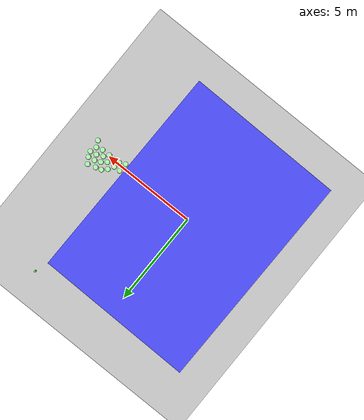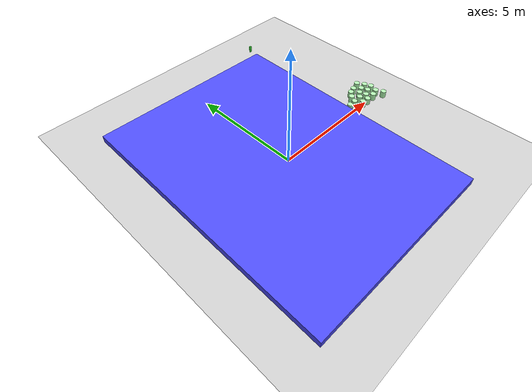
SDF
<sdf version="1.7">
 <world name="default">
  <model name="ground_plane">
   <static>1</static>
   <link name="link">
    <collision name="collision">
     <geometry><plane><normal>0 0 1</normal><size>100 100</size></plane></geometry>
     <surface><friction><ode><mu>100</mu><mu2>50</mu2></ode></friction></surface>
    </collision>
    <visual name="visual">
     <cast_shadows>0</cast_shadows>
     <geometry><plane><normal>0 0 1</normal><size>100 100</size></plane></geometry>
     <material>
      <script><uri>file://media/materials/scripts/gazebo.material</uri><name>Gazebo/Grey</name></script>
     </material>
    </visual>
   </link>
  </model>
  <model name="ban_400_80_30_clone_clone">
   <link name="link">
    <inertial>
     <mass>1</mass>
     <inertia>
      <ixx>0.166667</ixx>
      <ixy>0</ixy>
      <ixz>0</ixz>
      <iyy>0.166667</iyy>
      <iyz>0</iyz>
      <izz>0.166667</izz>
     </inertia>
    </inertial>
    <visual name="visual">
     <geometry><box><size>11.703 8.48251 0.306303</size></box></geometry>
     <material>
      <script><name>Gazebo/Grey</name><uri>file://media/materials/scripts/gazebo.material</uri></script>
      <shader type="pixel"><normal_map>__default__</normal_map></shader>
      <ambient>0.3 0.3 1 1</ambient>
      <diffuse>0.7 0.7 0.7 1</diffuse>
      <specular>0.01 0.01 0.01 1</specular>
      <emissive>0 0 0 1</emissive>
     </material>
    </visual>
    <collision name="collision">
     <geometry><box><size>11.703 8.48251 0.306303</size></box></geometry>
     <surface>
      <friction>
       <ode><mu>1</mu><mu2>1</mu2><fdir1>0 0 0</fdir1><slip1>0</slip1><slip2>0</slip2></ode>
       <torsional>
        <coefficient>1</coefficient>
        <patch_radius>0</patch_radius>
        <surface_radius>0</surface_radius>
        <use_patch_radius>1</use_patch_radius>
        <ode><slip>0</slip></ode>
       </torsional>
      </friction>
      <bounce><restitution_coefficient>0</restitution_coefficient><threshold>1e+06</threshold></bounce>
      <contact>
       <collide_without_contact>0</collide_without_contact>
       <collide_without_contact_bitmask>1</collide_without_contact_bitmask>
       <collide_bitmask>1</collide_bitmask>
       <ode>
        <soft_cfm>0</soft_cfm>
        <soft_erp>0.2</soft_erp>
        <kp>1e+13</kp>
        <kd>1</kd>
        <max_vel>0.01</max_vel>
        <min_depth>0</min_depth>
       </ode>
       <bullet>
        <split_impulse>1</split_impulse>
        <split_impulse_penetration_threshold>-0.01</split_impulse_penetration_threshold>
        <soft_cfm>0</soft_cfm>
        <soft_erp>0.2</soft_erp>
        <kp>1e+13</kp>
        <kd>1</kd>
       </bullet>
      </contact>
     </surface>
    </collision>
   </link>
   <static>1</static>
   <pose>-0.303945 0.196417 0.141155 0 -0 1.55763</pose>
  </model>
  <model name="mhz_8_30_clone">
   <link name="link">
    <inertial>
     <mass>1</mass>
     <inertia>
      <ixx>0.166667</ixx>
      <ixy>0</ixy>
      <ixz>0</ixz>
      <iyy>0.166667</iyy>
      <iyz>0</iyz>
      <izz>0.166667</izz>
     </inertia>
    </inertial>
    <visual name="visual">
     <geometry><box><size>0.08 0.08 0.3</size></box></geometry>
     <material>
      <script><name>Gazebo/Grey</name><uri>file://media/materials/scripts/gazebo.material</uri></script>
      <shader type="pixel"><normal_map>__default__</normal_map></shader>
      <ambient>0.3 1 0.3 1</ambient>
      <diffuse>0.7 0.7 0.7 1</diffuse>
      <specular>0.01 0.01 0.01 1</specular>
      <emissive>0 0 0 1</emissive>
     </material>
    </visual>
    <collision name="collision">
     <geometry><box><size>0.08 0.08 0.3</size></box></geometry>
     <surface>
      <friction>
       <ode><mu>1</mu><mu2>1</mu2><fdir1>0 0 0</fdir1><slip1>0</slip1><slip2>0</slip2></ode>
       <torsional>
        <coefficient>1</coefficient>
        <patch_radius>0</patch_radius>
        <surface_radius>0</surface_radius>
        <use_patch_radius>1</use_patch_radius>
        <ode><slip>0</slip></ode>
       </torsional>
      </friction>
      <bounce><restitution_coefficient>0</restitution_coefficient><threshold>1e+06</threshold></bounce>
      <contact>
       <collide_without_contact>0</collide_without_contact>
       <collide_without_contact_bitmask>1</collide_without_contact_bitmask>
       <collide_bitmask>1</collide_bitmask>
       <ode>
        <soft_cfm>0</soft_cfm>
        <soft_erp>0.2</soft_erp>
        <kp>1e+13</kp>
        <kd>1</kd>
        <max_vel>0.01</max_vel>
        <min_depth>0</min_depth>
       </ode>
       <bullet>
        <split_impulse>1</split_impulse>
        <split_impulse_penetration_threshold>-0.01</split_impulse_penetration_threshold>
        <soft_cfm>0</soft_cfm>
        <soft_erp>0.2</soft_erp>
        <kp>1e+13</kp>
        <kd>1</kd>
       </bullet>
      </contact>
     </surface>
    </collision>
   </link>
   <static>1</static>
   <pose>4.25594 6.71166 0.134436 0 -0 0</pose>
  </model>
  <model name="mhz_y_25_30_clone">
   <link name="link">
    <inertial>
     <mass>1</mass>
     <inertia><ixx>0.145833</ixx><ixy>0</ixy><ixz>0</ixz><iyy>0.145833</iyy><iyz>0</iyz><izz>0.125</izz></inertia>
    </inertial>
    <visual name="visual">
     <geometry><cylinder><radius>0.125</radius><length>0.3</length></cylinder></geometry>
     <material>
      <script><name>Gazebo/Grey</name><uri>file://media/materials/scripts/gazebo.material</uri></script>
      <shader type="pixel"><normal_map>__default__</normal_map></shader>
      <ambient>0 1 0 0</ambient>
      <diffuse>0.7 1 0.7 1</diffuse>
      <specular>0.01 0.01 0.01 1</specular>
      <emissive>0 0 0 1</emissive>
     </material>
    </visual>
    <collision name="collision">
     <geometry><cylinder><radius>0.125</radius><length>0.3</length></cylinder></geometry>
     <surface>
      <friction>
       <ode><mu>1</mu><mu2>1</mu2><fdir1>0 0 0</fdir1><slip1>0</slip1><slip2>0</slip2></ode>
       <torsional>
        <coefficient>1</coefficient>
        <patch_radius>0</patch_radius>
        <surface_radius>0</surface_radius>
        <use_patch_radius>1</use_patch_radius>
        <ode><slip>0</slip></ode>
       </torsional>
      </friction>
      <bounce><restitution_coefficient>0</restitution_coefficient><threshold>1e+06</threshold></bounce>
      <contact>
       <collide_without_contact>0</collide_without_contact>
       <collide_without_contact_bitmask>1</collide_without_contact_bitmask>
       <collide_bitmask>1</collide_bitmask>
       <ode>
        <soft_cfm>0</soft_cfm>
        <soft_erp>0.2</soft_erp>
        <kp>1e+13</kp>
        <kd>1</kd>
        <max_vel>0.01</max_vel>
        <min_depth>0</min_depth>
       </ode>
       <bullet>
        <split_impulse>1</split_impulse>
        <split_impulse_penetration_threshold>-0.01</split_impulse_penetration_threshold>
        <soft_cfm>0</soft_cfm>
        <soft_erp>0.2</soft_erp>
        <kp>1e+13</kp>
        <kd>1</kd>
       </bullet>
      </contact>
     </surface>
    </collision>
   </link>
   <static>1</static>
   <pose>4.40569 -0.082911 0.14679 0 -0 0</pose>
  </model>
  <model name="mhz_y_25_30_clone_13_clone">
   <link name="link">
    <inertial>
     <mass>1</mass>
     <inertia><ixx>0.145833</ixx><ixy>0</ixy><ixz>0</ixz><iyy>0.145833</iyy><iyz>0</iyz><izz>0.125</izz></inertia>
    </inertial>
    <visual name="visual">
     <geometry><cylinder><radius>0.125</radius><length>0.3</length></cylinder></geometry>
     <material>
      <script><name>Gazebo/Grey</name><uri>file://media/materials/scripts/gazebo.material</uri></script>
      <shader type="pixel"><normal_map>__default__</normal_map></shader>
      <ambient>0 1 0 0</ambient>
      <diffuse>0.7 1 0.7 1</diffuse>
      <specular>0.01 0.01 0.01 1</specular>
      <emissive>0 0 0 1</emissive>
     </material>
    </visual>
    <collision name="collision">
     <geometry><cylinder><radius>0.125</radius><length>0.3</length></cylinder></geometry>
     <surface>
      <friction>
       <ode><mu>1</mu><mu2>1</mu2><fdir1>0 0 0</fdir1><slip1>0</slip1><slip2>0</slip2></ode>
       <torsional>
        <coefficient>1</coefficient>
        <patch_radius>0</patch_radius>
        <surface_radius>0</surface_radius>
        <use_patch_radius>1</use_patch_radius>
        <ode><slip>0</slip></ode>
       </torsional>
      </friction>
      <bounce><restitution_coefficient>0</restitution_coefficient><threshold>1e+06</threshold></bounce>
      <contact>
       <collide_without_contact>0</collide_without_contact>
       <collide_without_contact_bitmask>1</collide_without_contact_bitmask>
       <collide_bitmask>1</collide_bitmask>
       <ode>
        <soft_cfm>0</soft_cfm>
        <soft_erp>0.2</soft_erp>
        <kp>1e+13</kp>
        <kd>1</kd>
        <max_vel>0.01</max_vel>
        <min_depth>0</min_depth>
       </ode>
       <bullet>
        <split_impulse>1</split_impulse>
        <split_impulse_penetration_threshold>-0.01</split_impulse_penetration_threshold>
        <soft_cfm>0</soft_cfm>
        <soft_erp>0.2</soft_erp>
        <kp>1e+13</kp>
        <kd>1</kd>
       </bullet>
      </contact>
     </surface>
    </collision>
   </link>
   <static>1</static>
   <pose>4.46457 0.231285 0.14679 0 -0 0</pose>
  </model>
  <model name="mhz_y_25_30_clone_13_clone_0">
   <link name="link">
    <inertial>
     <mass>1</mass>
     <inertia><ixx>0.145833</ixx><ixy>0</ixy><ixz>0</ixz><iyy>0.145833</iyy><iyz>0</iyz><izz>0.125</izz></inertia>
    </inertial>
    <visual name="visual">
     <geometry><cylinder><radius>0.125</radius><length>0.3</length></cylinder></geometry>
     <material>
      <script><name>Gazebo/Grey</name><uri>file://media/materials/scripts/gazebo.material</uri></script>
      <shader type="pixel"><normal_map>__default__</normal_map></shader>
      <ambient>0 1 0 0</ambient>
      <diffuse>0.7 1 0.7 1</diffuse>
      <specular>0.01 0.01 0.01 1</specular>
      <emissive>0 0 0 1</emissive>
     </material>
    </visual>
    <collision name="collision">
     <geometry><cylinder><radius>0.125</radius><length>0.3</length></cylinder></geometry>
     <surface>
      <friction>
       <ode><mu>1</mu><mu2>1</mu2><fdir1>0 0 0</fdir1><slip1>0</slip1><slip2>0</slip2></ode>
       <torsional>
        <coefficient>1</coefficient>
        <patch_radius>0</patch_radius>
        <surface_radius>0</surface_radius>
        <use_patch_radius>1</use_patch_radius>
        <ode><slip>0</slip></ode>
       </torsional>
      </friction>
      <bounce><restitution_coefficient>0</restitution_coefficient><threshold>1e+06</threshold></bounce>
      <contact>
       <collide_without_contact>0</collide_without_contact>
       <collide_without_contact_bitmask>1</collide_without_contact_bitmask>
       <collide_bitmask>1</collide_bitmask>
       <ode>
        <soft_cfm>0</soft_cfm>
        <soft_erp>0.2</soft_erp>
        <kp>1e+13</kp>
        <kd>1</kd>
        <max_vel>0.01</max_vel>
        <min_depth>0</min_depth>
       </ode>
       <bullet>
        <split_impulse>1</split_impulse>
        <split_impulse_penetration_threshold>-0.01</split_impulse_penetration_threshold>
        <soft_cfm>0</soft_cfm>
        <soft_erp>0.2</soft_erp>
        <kp>1e+13</kp>
        <kd>1</kd>
       </bullet>
      </contact>
     </surface>
    </collision>
   </link>
   <static>1</static>
   <pose>4.70067 -0.046369 0.14679 0 -0 0</pose>
  </model>
  <model name="mhz_y_25_30_clone_13_clone_3">
   <link name="link">
    <inertial>
     <mass>1</mass>
     <inertia><ixx>0.145833</ixx><ixy>0</ixy><ixz>0</ixz><iyy>0.145833</iyy><iyz>0</iyz><izz>0.125</izz></inertia>
    </inertial>
    <visual name="visual">
     <geometry><cylinder><radius>0.125</radius><length>0.3</length></cylinder></geometry>
     <material>
      <script><name>Gazebo/Grey</name><uri>file://media/materials/scripts/gazebo.material</uri></script>
      <shader type="pixel"><normal_map>__default__</normal_map></shader>
      <ambient>0 1 0 0</ambient>
      <diffuse>0.7 1 0.7 1</diffuse>
      <specular>0.01 0.01 0.01 1</specular>
      <emissive>0 0 0 1</emissive>
     </material>
    </visual>
    <collision name="collision">
     <geometry><cylinder><radius>0.125</radius><length>0.3</length></cylinder></geometry>
     <surface>
      <friction>
       <ode><mu>1</mu><mu2>1</mu2><fdir1>0 0 0</fdir1><slip1>0</slip1><slip2>0</slip2></ode>
       <torsional>
        <coefficient>1</coefficient>
        <patch_radius>0</patch_radius>
        <surface_radius>0</surface_radius>
        <use_patch_radius>1</use_patch_radius>
        <ode><slip>0</slip></ode>
       </torsional>
      </friction>
      <bounce><restitution_coefficient>0</restitution_coefficient><threshold>1e+06</threshold></bounce>
      <contact>
       <collide_without_contact>0</collide_without_contact>
       <collide_without_contact_bitmask>1</collide_without_contact_bitmask>
       <collide_bitmask>1</collide_bitmask>
       <ode>
        <soft_cfm>0</soft_cfm>
        <soft_erp>0.2</soft_erp>
        <kp>1e+13</kp>
        <kd>1</kd>
        <max_vel>0.01</max_vel>
        <min_depth>0</min_depth>
       </ode>
       <bullet>
        <split_impulse>1</split_impulse>
        <split_impulse_penetration_threshold>-0.01</split_impulse_penetration_threshold>
        <soft_cfm>0</soft_cfm>
        <soft_erp>0.2</soft_erp>
        <kp>1e+13</kp>
        <kd>1</kd>
       </bullet>
      </contact>
     </surface>
    </collision>
   </link>
   <static>1</static>
   <pose>5.01371 -0.066974 0.14679 0 -0 0</pose>
  </model>
  <model name="mhz_y_25_30_clone_13_clone_4">
   <link name="link">
    <inertial>
     <mass>1</mass>
     <inertia><ixx>0.145833</ixx><ixy>0</ixy><ixz>0</ixz><iyy>0.145833</iyy><iyz>0</iyz><izz>0.125</izz></inertia>
    </inertial>
    <visual name="visual">
     <geometry><cylinder><radius>0.125</radius><length>0.3</length></cylinder></geometry>
     <material>
      <script><name>Gazebo/Grey</name><uri>file://media/materials/scripts/gazebo.material</uri></script>
      <shader type="pixel"><normal_map>__default__</normal_map></shader>
      <ambient>0 1 0 0</ambient>
      <diffuse>0.7 1 0.7 1</diffuse>
      <specular>0.01 0.01 0.01 1</specular>
      <emissive>0 0 0 1</emissive>
     </material>
    </visual>
    <collision name="collision">
     <geometry><cylinder><radius>0.125</radius><length>0.3</length></cylinder></geometry>
     <surface>
      <friction>
       <ode><mu>1</mu><mu2>1</mu2><fdir1>0 0 0</fdir1><slip1>0</slip1><slip2>0</slip2></ode>
       <torsional>
        <coefficient>1</coefficient>
        <patch_radius>0</patch_radius>
        <surface_radius>0</surface_radius>
        <use_patch_radius>1</use_patch_radius>
        <ode><slip>0</slip></ode>
       </torsional>
      </friction>
      <bounce><restitution_coefficient>0</restitution_coefficient><threshold>1e+06</threshold></bounce>
      <contact>
       <collide_without_contact>0</collide_without_contact>
       <collide_without_contact_bitmask>1</collide_without_contact_bitmask>
       <collide_bitmask>1</collide_bitmask>
       <ode>
        <soft_cfm>0</soft_cfm>
        <soft_erp>0.2</soft_erp>
        <kp>1e+13</kp>
        <kd>1</kd>
        <max_vel>0.01</max_vel>
        <min_depth>0</min_depth>
       </ode>
       <bullet>
        <split_impulse>1</split_impulse>
        <split_impulse_penetration_threshold>-0.01</split_impulse_penetration_threshold>
        <soft_cfm>0</soft_cfm>
        <soft_erp>0.2</soft_erp>
        <kp>1e+13</kp>
        <kd>1</kd>
       </bullet>
      </contact>
     </surface>
    </collision>
   </link>
   <static>1</static>
   <pose>4.8668 0.259687 0.14679 0 -0 0</pose>
  </model>
  <model name="mhz_y_25_30_clone_13_clone_5">
   <link name="link">
    <inertial>
     <mass>1</mass>
     <inertia><ixx>0.145833</ixx><ixy>0</ixy><ixz>0</ixz><iyy>0.145833</iyy><iyz>0</iyz><izz>0.125</izz></inertia>
    </inertial>
    <visual name="visual">
     <geometry><cylinder><radius>0.125</radius><length>0.3</length></cylinder></geometry>
     <material>
      <script><name>Gazebo/Grey</name><uri>file://media/materials/scripts/gazebo.material</uri></script>
      <shader type="pixel"><normal_map>__default__</normal_map></shader>
      <ambient>0 1 0 0</ambient>
      <diffuse>0.7 1 0.7 1</diffuse>
      <specular>0.01 0.01 0.01 1</specular>
      <emissive>0 0 0 1</emissive>
     </material>
    </visual>
    <collision name="collision">
     <geometry><cylinder><radius>0.125</radius><length>0.3</length></cylinder></geometry>
     <surface>
      <friction>
       <ode><mu>1</mu><mu2>1</mu2><fdir1>0 0 0</fdir1><slip1>0</slip1><slip2>0</slip2></ode>
       <torsional>
        <coefficient>1</coefficient>
        <patch_radius>0</patch_radius>
        <surface_radius>0</surface_radius>
        <use_patch_radius>1</use_patch_radius>
        <ode><slip>0</slip></ode>
       </torsional>
      </friction>
      <bounce><restitution_coefficient>0</restitution_coefficient><threshold>1e+06</threshold></bounce>
      <contact>
       <collide_without_contact>0</collide_without_contact>
       <collide_without_contact_bitmask>1</collide_without_contact_bitmask>
       <collide_bitmask>1</collide_bitmask>
       <ode>
        <soft_cfm>0</soft_cfm>
        <soft_erp>0.2</soft_erp>
        <kp>1e+13</kp>
        <kd>1</kd>
        <max_vel>0.01</max_vel>
        <min_depth>0</min_depth>
       </ode>
       <bullet>
        <split_impulse>1</split_impulse>
        <split_impulse_penetration_threshold>-0.01</split_impulse_penetration_threshold>
        <soft_cfm>0</soft_cfm>
        <soft_erp>0.2</soft_erp>
        <kp>1e+13</kp>
        <kd>1</kd>
       </bullet>
      </contact>
     </surface>
    </collision>
   </link>
   <static>1</static>
   <pose>5.20718 0.170474 0.14679 0 -0 0</pose>
  </model>
  <model name="mhz_y_25_30_clone_13_clone_8">
   <link name="link">
    <inertial>
     <mass>1</mass>
     <inertia><ixx>0.145833</ixx><ixy>0</ixy><ixz>0</ixz><iyy>0.145833</iyy><iyz>0</iyz><izz>0.125</izz></inertia>
    </inertial>
    <visual name="visual">
     <geometry><cylinder><radius>0.125</radius><length>0.3</length></cylinder></geometry>
     <material>
      <script><name>Gazebo/Grey</name><uri>file://media/materials/scripts/gazebo.material</uri></script>
      <shader type="pixel"><normal_map>__default__</normal_map></shader>
      <ambient>0 1 0 0</ambient>
      <diffuse>0.7 1 0.7 1</diffuse>
      <specular>0.01 0.01 0.01 1</specular>
      <emissive>0 0 0 1</emissive>
     </material>
    </visual>
    <collision name="collision">
     <geometry><cylinder><radius>0.125</radius><length>0.3</length></cylinder></geometry>
     <surface>
      <friction>
       <ode><mu>1</mu><mu2>1</mu2><fdir1>0 0 0</fdir1><slip1>0</slip1><slip2>0</slip2></ode>
       <torsional>
        <coefficient>1</coefficient>
        <patch_radius>0</patch_radius>
        <surface_radius>0</surface_radius>
        <use_patch_radius>1</use_patch_radius>
        <ode><slip>0</slip></ode>
       </torsional>
      </friction>
      <bounce><restitution_coefficient>0</restitution_coefficient><threshold>1e+06</threshold></bounce>
      <contact>
       <collide_without_contact>0</collide_without_contact>
       <collide_without_contact_bitmask>1</collide_without_contact_bitmask>
       <collide_bitmask>1</collide_bitmask>
       <ode>
        <soft_cfm>0</soft_cfm>
        <soft_erp>0.2</soft_erp>
        <kp>1e+13</kp>
        <kd>1</kd>
        <max_vel>0.01</max_vel>
        <min_depth>0</min_depth>
       </ode>
       <bullet>
        <split_impulse>1</split_impulse>
        <split_impulse_penetration_threshold>-0.01</split_impulse_penetration_threshold>
        <soft_cfm>0</soft_cfm>
        <soft_erp>0.2</soft_erp>
        <kp>1e+13</kp>
        <kd>1</kd>
       </bullet>
      </contact>
     </surface>
    </collision>
   </link>
   <static>1</static>
   <pose>5.43473 -0.058627 0.14679 0 -0 0</pose>
  </model>
  <model name="mhz_y_25_30_clone_13_clone_9">
   <link name="link">
    <inertial>
     <mass>1</mass>
     <inertia><ixx>0.145833</ixx><ixy>0</ixy><ixz>0</ixz><iyy>0.145833</iyy><iyz>0</iyz><izz>0.125</izz></inertia>
    </inertial>
    <visual name="visual">
     <geometry><cylinder><radius>0.125</radius><length>0.3</length></cylinder></geometry>
     <material>
      <script><name>Gazebo/Grey</name><uri>file://media/materials/scripts/gazebo.material</uri></script>
      <shader type="pixel"><normal_map>__default__</normal_map></shader>
      <ambient>0 1 0 0</ambient>
      <diffuse>0.7 1 0.7 1</diffuse>
      <specular>0.01 0.01 0.01 1</specular>
      <emissive>0 0 0 1</emissive>
     </material>
    </visual>
    <collision name="collision">
     <geometry><cylinder><radius>0.125</radius><length>0.3</length></cylinder></geometry>
     <surface>
      <friction>
       <ode><mu>1</mu><mu2>1</mu2><fdir1>0 0 0</fdir1><slip1>0</slip1><slip2>0</slip2></ode>
       <torsional>
        <coefficient>1</coefficient>
        <patch_radius>0</patch_radius>
        <surface_radius>0</surface_radius>
        <use_patch_radius>1</use_patch_radius>
        <ode><slip>0</slip></ode>
       </torsional>
      </friction>
      <bounce><restitution_coefficient>0</restitution_coefficient><threshold>1e+06</threshold></bounce>
      <contact>
       <collide_without_contact>0</collide_without_contact>
       <collide_without_contact_bitmask>1</collide_without_contact_bitmask>
       <collide_bitmask>1</collide_bitmask>
       <ode>
        <soft_cfm>0</soft_cfm>
        <soft_erp>0.2</soft_erp>
        <kp>1e+13</kp>
        <kd>1</kd>
        <max_vel>0.01</max_vel>
        <min_depth>0</min_depth>
       </ode>
       <bullet>
        <split_impulse>1</split_impulse>
        <split_impulse_penetration_threshold>-0.01</split_impulse_penetration_threshold>
        <soft_cfm>0</soft_cfm>
        <soft_erp>0.2</soft_erp>
        <kp>1e+13</kp>
        <kd>1</kd>
       </bullet>
      </contact>
     </surface>
    </collision>
   </link>
   <static>1</static>
   <pose>5.12285 0.466035 0.14679 0 -0 0</pose>
  </model>
  <model name="mhz_y_25_30_clone_13_clone_10">
   <link name="link">
    <inertial>
     <mass>1</mass>
     <inertia><ixx>0.145833</ixx><ixy>0</ixy><ixz>0</ixz><iyy>0.145833</iyy><iyz>0</iyz><izz>0.125</izz></inertia>
    </inertial>
    <visual name="visual">
     <geometry><cylinder><radius>0.125</radius><length>0.3</length></cylinder></geometry>
     <material>
      <script><name>Gazebo/Grey</name><uri>file://media/materials/scripts/gazebo.material</uri></script>
      <shader type="pixel"><normal_map>__default__</normal_map></shader>
      <ambient>0 1 0 0</ambient>
      <diffuse>0.7 1 0.7 1</diffuse>
      <specular>0.01 0.01 0.01 1</specular>
      <emissive>0 0 0 1</emissive>
     </material>
    </visual>
    <collision name="collision">
     <geometry><cylinder><radius>0.125</radius><length>0.3</length></cylinder></geometry>
     <surface>
      <friction>
       <ode><mu>1</mu><mu2>1</mu2><fdir1>0 0 0</fdir1><slip1>0</slip1><slip2>0</slip2></ode>
       <torsional>
        <coefficient>1</coefficient>
        <patch_radius>0</patch_radius>
        <surface_radius>0</surface_radius>
        <use_patch_radius>1</use_patch_radius>
        <ode><slip>0</slip></ode>
       </torsional>
      </friction>
      <bounce><restitution_coefficient>0</restitution_coefficient><threshold>1e+06</threshold></bounce>
      <contact>
       <collide_without_contact>0</collide_without_contact>
       <collide_without_contact_bitmask>1</collide_without_contact_bitmask>
       <collide_bitmask>1</collide_bitmask>
       <ode>
        <soft_cfm>0</soft_cfm>
        <soft_erp>0.2</soft_erp>
        <kp>1e+13</kp>
        <kd>1</kd>
        <max_vel>0.01</max_vel>
        <min_depth>0</min_depth>
       </ode>
       <bullet>
        <split_impulse>1</split_impulse>
        <split_impulse_penetration_threshold>-0.01</split_impulse_penetration_threshold>
        <soft_cfm>0</soft_cfm>
        <soft_erp>0.2</soft_erp>
        <kp>1e+13</kp>
        <kd>1</kd>
       </bullet>
      </contact>
     </surface>
    </collision>
   </link>
   <static>1</static>
   <pose>4.63702 0.522884 0.14679 0 -0 0</pose>
  </model>
  <model name="mhz_y_25_30_clone_13_clone_11">
   <link name="link">
    <inertial>
     <mass>1</mass>
     <inertia><ixx>0.145833</ixx><ixy>0</ixy><ixz>0</ixz><iyy>0.145833</iyy><iyz>0</iyz><izz>0.125</izz></inertia>
    </inertial>
    <visual name="visual">
     <geometry><cylinder><radius>0.125</radius><length>0.3</length></cylinder></geometry>
     <material>
      <script><name>Gazebo/Grey</name><uri>file://media/materials/scripts/gazebo.material</uri></script>
      <shader type="pixel"><normal_map>__default__</normal_map></shader>
      <ambient>0 1 0 0</ambient>
      <diffuse>0.7 1 0.7 1</diffuse>
      <specular>0.01 0.01 0.01 1</specular>
      <emissive>0 0 0 1</emissive>
     </material>
    </visual>
    <collision name="collision">
     <geometry><cylinder><radius>0.125</radius><length>0.3</length></cylinder></geometry>
     <surface>
      <friction>
       <ode><mu>1</mu><mu2>1</mu2><fdir1>0 0 0</fdir1><slip1>0</slip1><slip2>0</slip2></ode>
       <torsional>
        <coefficient>1</coefficient>
        <patch_radius>0</patch_radius>
        <surface_radius>0</surface_radius>
        <use_patch_radius>1</use_patch_radius>
        <ode><slip>0</slip></ode>
       </torsional>
      </friction>
      <bounce><restitution_coefficient>0</restitution_coefficient><threshold>1e+06</threshold></bounce>
      <contact>
       <collide_without_contact>0</collide_without_contact>
       <collide_without_contact_bitmask>1</collide_without_contact_bitmask>
       <collide_bitmask>1</collide_bitmask>
       <ode>
        <soft_cfm>0</soft_cfm>
        <soft_erp>0.2</soft_erp>
        <kp>1e+13</kp>
        <kd>1</kd>
        <max_vel>0.01</max_vel>
        <min_depth>0</min_depth>
       </ode>
       <bullet>
        <split_impulse>1</split_impulse>
        <split_impulse_penetration_threshold>-0.01</split_impulse_penetration_threshold>
        <soft_cfm>0</soft_cfm>
        <soft_erp>0.2</soft_erp>
        <kp>1e+13</kp>
        <kd>1</kd>
       </bullet>
      </contact>
     </surface>
    </collision>
   </link>
   <static>1</static>
   <pose>5.52407 0.310951 0.14679 0 -0 0</pose>
  </model>
  <model name="mhz_y_25_30_clone_13_clone_12">
   <link name="link">
    <inertial>
     <mass>1</mass>
     <inertia><ixx>0.145833</ixx><ixy>0</ixy><ixz>0</ixz><iyy>0.145833</iyy><iyz>0</iyz><izz>0.125</izz></inertia>
    </inertial>
    <visual name="visual">
     <geometry><cylinder><radius>0.125</radius><length>0.3</length></cylinder></geometry>
     <material>
      <script><name>Gazebo/Grey</name><uri>file://media/materials/scripts/gazebo.material</uri></script>
      <shader type="pixel"><normal_map>__default__</normal_map></shader>
      <ambient>0 1 0 0</ambient>
      <diffuse>0.7 1 0.7 1</diffuse>
      <specular>0.01 0.01 0.01 1</specular>
      <emissive>0 0 0 1</emissive>
     </material>
    </visual>
    <collision name="collision">
     <geometry><cylinder><radius>0.125</radius><length>0.3</length></cylinder></geometry>
     <surface>
      <friction>
       <ode><mu>1</mu><mu2>1</mu2><fdir1>0 0 0</fdir1><slip1>0</slip1><slip2>0</slip2></ode>
       <torsional>
        <coefficient>1</coefficient>
        <patch_radius>0</patch_radius>
        <surface_radius>0</surface_radius>
        <use_patch_radius>1</use_patch_radius>
        <ode><slip>0</slip></ode>
       </torsional>
      </friction>
      <bounce><restitution_coefficient>0</restitution_coefficient><threshold>1e+06</threshold></bounce>
      <contact>
       <collide_without_contact>0</collide_without_contact>
       <collide_without_contact_bitmask>1</collide_without_contact_bitmask>
       <collide_bitmask>1</collide_bitmask>
       <ode>
        <soft_cfm>0</soft_cfm>
        <soft_erp>0.2</soft_erp>
        <kp>1e+13</kp>
        <kd>1</kd>
        <max_vel>0.01</max_vel>
        <min_depth>0</min_depth>
       </ode>
       <bullet>
        <split_impulse>1</split_impulse>
        <split_impulse_penetration_threshold>-0.01</split_impulse_penetration_threshold>
        <soft_cfm>0</soft_cfm>
        <soft_erp>0.2</soft_erp>
        <kp>1e+13</kp>
        <kd>1</kd>
       </bullet>
      </contact>
     </surface>
    </collision>
   </link>
   <static>1</static>
   <pose>5.85996 0.375597 0.14679 0 -0 0</pose>
  </model>
  <model name="mhz_y_25_30_clone_13_clone_13">
   <link name="link">
    <inertial>
     <mass>1</mass>
     <inertia><ixx>0.145833</ixx><ixy>0</ixy><ixz>0</ixz><iyy>0.145833</iyy><iyz>0</iyz><izz>0.125</izz></inertia>
    </inertial>
    <visual name="visual">
     <geometry><cylinder><radius>0.125</radius><length>0.3</length></cylinder></geometry>
     <material>
      <script><name>Gazebo/Grey</name><uri>file://media/materials/scripts/gazebo.material</uri></script>
      <shader type="pixel"><normal_map>__default__</normal_map></shader>
      <ambient>0 1 0 0</ambient>
      <diffuse>0.7 1 0.7 1</diffuse>
      <specular>0.01 0.01 0.01 1</specular>
      <emissive>0 0 0 1</emissive>
     </material>
    </visual>
    <collision name="collision">
     <geometry><cylinder><radius>0.125</radius><length>0.3</length></cylinder></geometry>
     <surface>
      <friction>
       <ode><mu>1</mu><mu2>1</mu2><fdir1>0 0 0</fdir1><slip1>0</slip1><slip2>0</slip2></ode>
       <torsional>
        <coefficient>1</coefficient>
        <patch_radius>0</patch_radius>
        <surface_radius>0</surface_radius>
        <use_patch_radius>1</use_patch_radius>
        <ode><slip>0</slip></ode>
       </torsional>
      </friction>
      <bounce><restitution_coefficient>0</restitution_coefficient><threshold>1e+06</threshold></bounce>
      <contact>
       <collide_without_contact>0</collide_without_contact>
       <collide_without_contact_bitmask>1</collide_without_contact_bitmask>
       <collide_bitmask>1</collide_bitmask>
       <ode>
        <soft_cfm>0</soft_cfm>
        <soft_erp>0.2</soft_erp>
        <kp>1e+13</kp>
        <kd>1</kd>
        <max_vel>0.01</max_vel>
        <min_depth>0</min_depth>
       </ode>
       <bullet>
        <split_impulse>1</split_impulse>
        <split_impulse_penetration_threshold>-0.01</split_impulse_penetration_threshold>
        <soft_cfm>0</soft_cfm>
        <soft_erp>0.2</soft_erp>
        <kp>1e+13</kp>
        <kd>1</kd>
       </bullet>
      </contact>
     </surface>
    </collision>
   </link>
   <static>1</static>
   <pose>5.75312 0.039867 0.14679 0 -0 0</pose>
  </model>
  <model name="mhz_y_25_30_clone_13_clone_15">
   <link name="link">
    <inertial>
     <mass>1</mass>
     <inertia><ixx>0.145833</ixx><ixy>0</ixy><ixz>0</ixz><iyy>0.145833</iyy><iyz>0</iyz><izz>0.125</izz></inertia>
    </inertial>
    <visual name="visual">
     <geometry><cylinder><radius>0.125</radius><length>0.3</length></cylinder></geometry>
     <material>
      <script><name>Gazebo/Grey</name><uri>file://media/materials/scripts/gazebo.material</uri></script>
      <shader type="pixel"><normal_map>__default__</normal_map></shader>
      <ambient>0 1 0 0</ambient>
      <diffuse>0.7 1 0.7 1</diffuse>
      <specular>0.01 0.01 0.01 1</specular>
      <emissive>0 0 0 1</emissive>
     </material>
    </visual>
    <collision name="collision">
     <geometry><cylinder><radius>0.125</radius><length>0.3</length></cylinder></geometry>
     <surface>
      <friction>
       <ode><mu>1</mu><mu2>1</mu2><fdir1>0 0 0</fdir1><slip1>0</slip1><slip2>0</slip2></ode>
       <torsional>
        <coefficient>1</coefficient>
        <patch_radius>0</patch_radius>
        <surface_radius>0</surface_radius>
        <use_patch_radius>1</use_patch_radius>
        <ode><slip>0</slip></ode>
       </torsional>
      </friction>
      <bounce><restitution_coefficient>0</restitution_coefficient><threshold>1e+06</threshold></bounce>
      <contact>
       <collide_without_contact>0</collide_without_contact>
       <collide_without_contact_bitmask>1</collide_without_contact_bitmask>
       <collide_bitmask>1</collide_bitmask>
       <ode>
        <soft_cfm>0</soft_cfm>
        <soft_erp>0.2</soft_erp>
        <kp>1e+13</kp>
        <kd>1</kd>
        <max_vel>0.01</max_vel>
        <min_depth>0</min_depth>
       </ode>
       <bullet>
        <split_impulse>1</split_impulse>
        <split_impulse_penetration_threshold>-0.01</split_impulse_penetration_threshold>
        <soft_cfm>0</soft_cfm>
        <soft_erp>0.2</soft_erp>
        <kp>1e+13</kp>
        <kd>1</kd>
       </bullet>
      </contact>
     </surface>
    </collision>
   </link>
   <static>1</static>
   <pose>5.91177 -0.274918 0.14679 0 -0 0</pose>
  </model>
  <model name="mhz_y_25_30_clone_13_clone_18">
   <link name="link">
    <inertial>
     <mass>1</mass>
     <inertia><ixx>0.145833</ixx><ixy>0</ixy><ixz>0</ixz><iyy>0.145833</iyy><iyz>0</iyz><izz>0.125</izz></inertia>
    </inertial>
    <visual name="visual">
     <geometry><cylinder><radius>0.125</radius><length>0.3</length></cylinder></geometry>
     <material>
      <script><name>Gazebo/Grey</name><uri>file://media/materials/scripts/gazebo.material</uri></script>
      <shader type="pixel"><normal_map>__default__</normal_map></shader>
      <ambient>0 1 0 0</ambient>
      <diffuse>0.7 1 0.7 1</diffuse>
      <specular>0.01 0.01 0.01 1</specular>
      <emissive>0 0 0 1</emissive>
     </material>
    </visual>
    <collision name="collision">
     <geometry><cylinder><radius>0.125</radius><length>0.3</length></cylinder></geometry>
     <surface>
      <friction>
       <ode><mu>1</mu><mu2>1</mu2><fdir1>0 0 0</fdir1><slip1>0</slip1><slip2>0</slip2></ode>
       <torsional>
        <coefficient>1</coefficient>
        <patch_radius>0</patch_radius>
        <surface_radius>0</surface_radius>
        <use_patch_radius>1</use_patch_radius>
        <ode><slip>0</slip></ode>
       </torsional>
      </friction>
      <bounce><restitution_coefficient>0</restitution_coefficient><threshold>1e+06</threshold></bounce>
      <contact>
       <collide_without_contact>0</collide_without_contact>
       <collide_without_contact_bitmask>1</collide_without_contact_bitmask>
       <collide_bitmask>1</collide_bitmask>
       <ode>
        <soft_cfm>0</soft_cfm>
        <soft_erp>0.2</soft_erp>
        <kp>1e+13</kp>
        <kd>1</kd>
        <max_vel>0.01</max_vel>
        <min_depth>0</min_depth>
       </ode>
       <bullet>
        <split_impulse>1</split_impulse>
        <split_impulse_penetration_threshold>-0.01</split_impulse_penetration_threshold>
        <soft_cfm>0</soft_cfm>
        <soft_erp>0.2</soft_erp>
        <kp>1e+13</kp>
        <kd>1</kd>
       </bullet>
      </contact>
     </surface>
    </collision>
   </link>
   <static>1</static>
   <pose>5.42405 0.5932 0.14679 0 -0 0</pose>
  </model>
  <model name="mhz_y_25_30_clone_13_clone_19">
   <link name="link">
    <inertial>
     <mass>1</mass>
     <inertia><ixx>0.145833</ixx><ixy>0</ixy><ixz>0</ixz><iyy>0.145833</iyy><iyz>0</iyz><izz>0.125</izz></inertia>
    </inertial>
    <visual name="visual">
     <geometry><cylinder><radius>0.125</radius><length>0.3</length></cylinder></geometry>
     <material>
      <script><name>Gazebo/Grey</name><uri>file://media/materials/scripts/gazebo.material</uri></script>
      <shader type="pixel"><normal_map>__default__</normal_map></shader>
      <ambient>0 1 0 0</ambient>
      <diffuse>0.7 1 0.7 1</diffuse>
      <specular>0.01 0.01 0.01 1</specular>
      <emissive>0 0 0 1</emissive>
     </material>
    </visual>
    <collision name="collision">
     <geometry><cylinder><radius>0.125</radius><length>0.3</length></cylinder></geometry>
     <surface>
      <friction>
       <ode><mu>1</mu><mu2>1</mu2><fdir1>0 0 0</fdir1><slip1>0</slip1><slip2>0</slip2></ode>
       <torsional>
        <coefficient>1</coefficient>
        <patch_radius>0</patch_radius>
        <surface_radius>0</surface_radius>
        <use_patch_radius>1</use_patch_radius>
        <ode><slip>0</slip></ode>
       </torsional>
      </friction>
      <bounce><restitution_coefficient>0</restitution_coefficient><threshold>1e+06</threshold></bounce>
      <contact>
       <collide_without_contact>0</collide_without_contact>
       <collide_without_contact_bitmask>1</collide_without_contact_bitmask>
       <collide_bitmask>1</collide_bitmask>
       <ode>
        <soft_cfm>0</soft_cfm>
        <soft_erp>0.2</soft_erp>
        <kp>1e+13</kp>
        <kd>1</kd>
        <max_vel>0.01</max_vel>
        <min_depth>0</min_depth>
       </ode>
       <bullet>
        <split_impulse>1</split_impulse>
        <split_impulse_penetration_threshold>-0.01</split_impulse_penetration_threshold>
        <soft_cfm>0</soft_cfm>
        <soft_erp>0.2</soft_erp>
        <kp>1e+13</kp>
        <kd>1</kd>
       </bullet>
      </contact>
     </surface>
    </collision>
   </link>
   <static>1</static>
   <pose>5.75696 0.658561 0.14679 0 -0 0</pose>
  </model>
  <model name="mhz_y_25_30_clone_13_clone_43">
   <link name="link">
    <inertial>
     <mass>1</mass>
     <inertia><ixx>0.145833</ixx><ixy>0</ixy><ixz>0</ixz><iyy>0.145833</iyy><iyz>0</iyz><izz>0.125</izz></inertia>
    </inertial>
    <visual name="visual">
     <geometry><cylinder><radius>0.125</radius><length>0.3</length></cylinder></geometry>
     <material>
      <script><name>Gazebo/Grey</name><uri>file://media/materials/scripts/gazebo.material</uri></script>
      <shader type="pixel"><normal_map>__default__</normal_map></shader>
      <ambient>0 1 0 0</ambient>
      <diffuse>0.7 1 0.7 1</diffuse>
      <specular>0.01 0.01 0.01 1</specular>
      <emissive>0 0 0 1</emissive>
     </material>
    </visual>
    <collision name="collision">
     <geometry><cylinder><radius>0.125</radius><length>0.3</length></cylinder></geometry>
     <surface>
      <friction>
       <ode><mu>1</mu><mu2>1</mu2><fdir1>0 0 0</fdir1><slip1>0</slip1><slip2>0</slip2></ode>
       <torsional>
        <coefficient>1</coefficient>
        <patch_radius>0</patch_radius>
        <surface_radius>0</surface_radius>
        <use_patch_radius>1</use_patch_radius>
        <ode><slip>0</slip></ode>
       </torsional>
      </friction>
      <bounce><restitution_coefficient>0</restitution_coefficient><threshold>1e+06</threshold></bounce>
      <contact>
       <collide_without_contact>0</collide_without_contact>
       <collide_without_contact_bitmask>1</collide_without_contact_bitmask>
       <collide_bitmask>1</collide_bitmask>
       <ode>
        <soft_cfm>0</soft_cfm>
        <soft_erp>0.2</soft_erp>
        <kp>1e+13</kp>
        <kd>1</kd>
        <max_vel>0.01</max_vel>
        <min_depth>0</min_depth>
       </ode>
       <bullet>
        <split_impulse>1</split_impulse>
        <split_impulse_penetration_threshold>-0.01</split_impulse_penetration_threshold>
        <soft_cfm>0</soft_cfm>
        <soft_erp>0.2</soft_erp>
        <kp>1e+13</kp>
        <kd>1</kd>
       </bullet>
      </contact>
     </surface>
    </collision>
   </link>
   <static>1</static>
   <pose>4.86618 0.745104 0.14679 0 -0 0</pose>
  </model>
  <model name="mhz_y_25_30_clone_13_clone_46">
   <link name="link">
    <inertial>
     <mass>1</mass>
     <inertia><ixx>0.145833</ixx><ixy>0</ixy><ixz>0</ixz><iyy>0.145833</iyy><iyz>0</iyz><izz>0.125</izz></inertia>
    </inertial>
    <visual name="visual">
     <geometry><cylinder><radius>0.125</radius><length>0.3</length></cylinder></geometry>
     <material>
      <script><name>Gazebo/Grey</name><uri>file://media/materials/scripts/gazebo.material</uri></script>
      <shader type="pixel"><normal_map>__default__</normal_map></shader>
      <ambient>0 1 0 0</ambient>
      <diffuse>0.7 1 0.7 1</diffuse>
      <specular>0.01 0.01 0.01 1</specular>
      <emissive>0 0 0 1</emissive>
     </material>
    </visual>
    <collision name="collision">
     <geometry><cylinder><radius>0.125</radius><length>0.3</length></cylinder></geometry>
     <surface>
      <friction>
       <ode><mu>1</mu><mu2>1</mu2><fdir1>0 0 0</fdir1><slip1>0</slip1><slip2>0</slip2></ode>
       <torsional>
        <coefficient>1</coefficient>
        <patch_radius>0</patch_radius>
        <surface_radius>0</surface_radius>
        <use_patch_radius>1</use_patch_radius>
        <ode><slip>0</slip></ode>
       </torsional>
      </friction>
      <bounce><restitution_coefficient>0</restitution_coefficient><threshold>1e+06</threshold></bounce>
      <contact>
       <collide_without_contact>0</collide_without_contact>
       <collide_without_contact_bitmask>1</collide_without_contact_bitmask>
       <collide_bitmask>1</collide_bitmask>
       <ode>
        <soft_cfm>0</soft_cfm>
        <soft_erp>0.2</soft_erp>
        <kp>1e+13</kp>
        <kd>1</kd>
        <max_vel>0.01</max_vel>
        <min_depth>0</min_depth>
       </ode>
       <bullet>
        <split_impulse>1</split_impulse>
        <split_impulse_penetration_threshold>-0.01</split_impulse_penetration_threshold>
        <soft_cfm>0</soft_cfm>
        <soft_erp>0.2</soft_erp>
        <kp>1e+13</kp>
        <kd>1</kd>
       </bullet>
      </contact>
     </surface>
    </collision>
   </link>
   <static>1</static>
   <pose>5.15874 0.829971 0.14679 0 -0 0</pose>
  </model>
  <model name="mhz_y_25_30_clone_13_clone_48">
   <link name="link">
    <inertial>
     <mass>1</mass>
     <inertia><ixx>0.145833</ixx><ixy>0</ixy><ixz>0</ixz><iyy>0.145833</iyy><iyz>0</iyz><izz>0.125</izz></inertia>
    </inertial>
    <visual name="visual">
     <geometry><cylinder><radius>0.125</radius><length>0.3</length></cylinder></geometry>
     <material>
      <script><name>Gazebo/Grey</name><uri>file://media/materials/scripts/gazebo.material</uri></script>
      <shader type="pixel"><normal_map>__default__</normal_map></shader>
      <ambient>0 1 0 0</ambient>
      <diffuse>0.7 1 0.7 1</diffuse>
      <specular>0.01 0.01 0.01 1</specular>
      <emissive>0 0 0 1</emissive>
     </material>
    </visual>
    <collision name="collision">
     <geometry><cylinder><radius>0.125</radius><length>0.3</length></cylinder></geometry>
     <surface>
      <friction>
       <ode><mu>1</mu><mu2>1</mu2><fdir1>0 0 0</fdir1><slip1>0</slip1><slip2>0</slip2></ode>
       <torsional>
        <coefficient>1</coefficient>
        <patch_radius>0</patch_radius>
        <surface_radius>0</surface_radius>
        <use_patch_radius>1</use_patch_radius>
        <ode><slip>0</slip></ode>
       </torsional>
      </friction>
      <bounce><restitution_coefficient>0</restitution_coefficient><threshold>1e+06</threshold></bounce>
      <contact>
       <collide_without_contact>0</collide_without_contact>
       <collide_without_contact_bitmask>1</collide_without_contact_bitmask>
       <collide_bitmask>1</collide_bitmask>
       <ode>
        <soft_cfm>0</soft_cfm>
        <soft_erp>0.2</soft_erp>
        <kp>1e+13</kp>
        <kd>1</kd>
        <max_vel>0.01</max_vel>
        <min_depth>0</min_depth>
       </ode>
       <bullet>
        <split_impulse>1</split_impulse>
        <split_impulse_penetration_threshold>-0.01</split_impulse_penetration_threshold>
        <soft_cfm>0</soft_cfm>
        <soft_erp>0.2</soft_erp>
        <kp>1e+13</kp>
        <kd>1</kd>
       </bullet>
      </contact>
     </surface>
    </collision>
   </link>
   <static>1</static>
   <pose>5.57083 0.955229 0.14679 0 -0 0</pose>
  </model>
  <model name="mhz_y_25_30_clone_13_clone_clone">
   <link name="link">
    <inertial>
     <mass>1</mass>
     <inertia><ixx>0.145833</ixx><ixy>0</ixy><ixz>0</ixz><iyy>0.145833</iyy><iyz>0</iyz><izz>0.125</izz></inertia>
    </inertial>
    <visual name="visual">
     <geometry><cylinder><radius>0.125</radius><length>0.3</length></cylinder></geometry>
     <material>
      <script><name>Gazebo/Grey</name><uri>file://media/materials/scripts/gazebo.material</uri></script>
      <shader type="pixel"><normal_map>__default__</normal_map></shader>
      <ambient>0 1 0 0</ambient>
      <diffuse>0.7 1 0.7 1</diffuse>
      <specular>0.01 0.01 0.01 1</specular>
      <emissive>0 0 0 1</emissive>
     </material>
    </visual>
    <collision name="collision">
     <geometry><cylinder><radius>0.125</radius><length>0.3</length></cylinder></geometry>
     <surface>
      <friction>
       <ode><mu>1</mu><mu2>1</mu2><fdir1>0 0 0</fdir1><slip1>0</slip1><slip2>0</slip2></ode>
       <torsional>
        <coefficient>1</coefficient>
        <patch_radius>0</patch_radius>
        <surface_radius>0</surface_radius>
        <use_patch_radius>1</use_patch_radius>
        <ode><slip>0</slip></ode>
       </torsional>
      </friction>
      <bounce><restitution_coefficient>0</restitution_coefficient><threshold>1e+06</threshold></bounce>
      <contact>
       <collide_without_contact>0</collide_without_contact>
       <collide_without_contact_bitmask>1</collide_without_contact_bitmask>
       <collide_bitmask>1</collide_bitmask>
       <ode>
        <soft_cfm>0</soft_cfm>
        <soft_erp>0.2</soft_erp>
        <kp>1e+13</kp>
        <kd>1</kd>
        <max_vel>0.01</max_vel>
        <min_depth>0</min_depth>
       </ode>
       <bullet>
        <split_impulse>1</split_impulse>
        <split_impulse_penetration_threshold>-0.01</split_impulse_penetration_threshold>
        <soft_cfm>0</soft_cfm>
        <soft_erp>0.2</soft_erp>
        <kp>1e+13</kp>
        <kd>1</kd>
       </bullet>
      </contact>
     </surface>
    </collision>
   </link>
   <static>1</static>
   <pose>4.13189 0.215274 0.14679 0 -0 0</pose>
  </model>
  <model name="mhz_y_25_30_clone_13_clone_clone_0">
   <link name="link">
    <inertial>
     <mass>1</mass>
     <inertia><ixx>0.145833</ixx><ixy>0</ixy><ixz>0</ixz><iyy>0.145833</iyy><iyz>0</iyz><izz>0.125</izz></inertia>
    </inertial>
    <visual name="visual">
     <geometry><cylinder><radius>0.125</radius><length>0.3</length></cylinder></geometry>
     <material>
      <script><name>Gazebo/Grey</name><uri>file://media/materials/scripts/gazebo.material</uri></script>
      <shader type="pixel"><normal_map>__default__</normal_map></shader>
      <ambient>0 1 0 0</ambient>
      <diffuse>0.7 1 0.7 1</diffuse>
      <specular>0.01 0.01 0.01 1</specular>
      <emissive>0 0 0 1</emissive>
     </material>
    </visual>
    <collision name="collision">
     <geometry><cylinder><radius>0.125</radius><length>0.3</length></cylinder></geometry>
     <surface>
      <friction>
       <ode><mu>1</mu><mu2>1</mu2><fdir1>0 0 0</fdir1><slip1>0</slip1><slip2>0</slip2></ode>
       <torsional>
        <coefficient>1</coefficient>
        <patch_radius>0</patch_radius>
        <surface_radius>0</surface_radius>
        <use_patch_radius>1</use_patch_radius>
        <ode><slip>0</slip></ode>
       </torsional>
      </friction>
      <bounce><restitution_coefficient>0</restitution_coefficient><threshold>1e+06</threshold></bounce>
      <contact>
       <collide_without_contact>0</collide_without_contact>
       <collide_without_contact_bitmask>1</collide_without_contact_bitmask>
       <collide_bitmask>1</collide_bitmask>
       <ode>
        <soft_cfm>0</soft_cfm>
        <soft_erp>0.2</soft_erp>
        <kp>1e+13</kp>
        <kd>1</kd>
        <max_vel>0.01</max_vel>
        <min_depth>0</min_depth>
       </ode>
       <bullet>
        <split_impulse>1</split_impulse>
        <split_impulse_penetration_threshold>-0.01</split_impulse_penetration_threshold>
        <soft_cfm>0</soft_cfm>
        <soft_erp>0.2</soft_erp>
        <kp>1e+13</kp>
        <kd>1</kd>
       </bullet>
      </contact>
     </surface>
    </collision>
   </link>
   <static>1</static>
   <pose>4.10534 -0.226289 0.14679 0 -0 0</pose>
  </model>
 </world>
</sdf>
